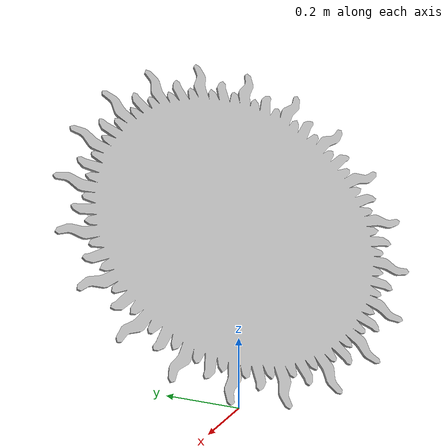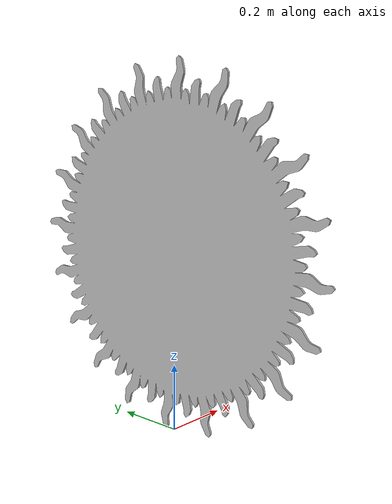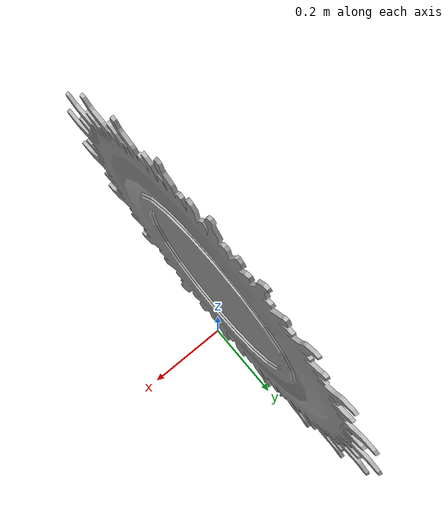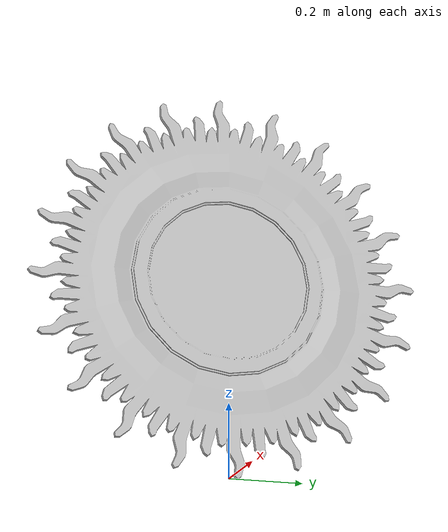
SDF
<?xml version='1.0'?>
<sdf version='1.4'>
  <model name='s__1559'>
    <pose>0 0 0 0 0 0</pose>
    <static>true</static>
    <link name='link'>
      <collision name='collision'>
        <pose>0 0 0 0 0 0</pose>
        <geometry>
          <box>
            <size>0.0200001 1.09 2</size>
          </box>
        </geometry>
      </collision>
      <visual name='visual'>
        <pose>0 0 0 0 0 0</pose>
        <geometry>
          <mesh><uri>model://s__1559/s__1559.dae</uri></mesh>
        </geometry>
      </visual>
    </link>
  </model>
</sdf>
